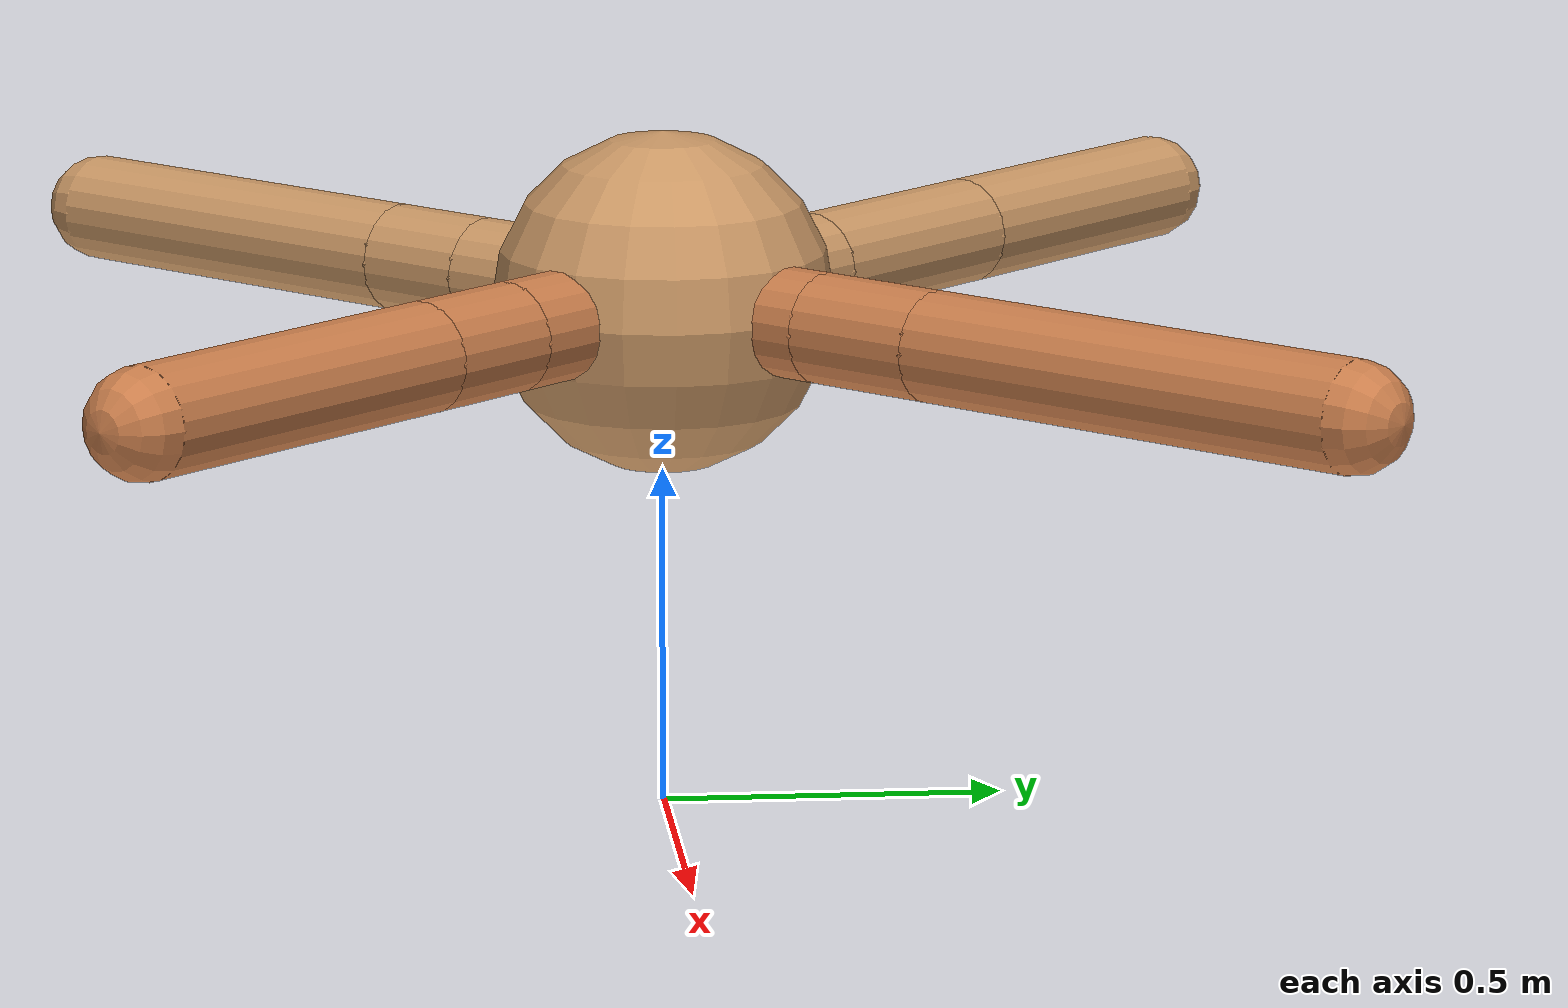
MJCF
<mujoco model="ant">
  <compiler angle="degree" coordinate="local" inertiafromgeom="true" />
  <option integrator="RK4" timestep="0.01" />
  <custom>
    <numeric data="0.0 0.0 0.55 1.0 0.0 0.0 0.0 0.0 1.0 0.0 -1.0 0.0 -1.0 0.0 1.0" name="init_qpos" />
  </custom>
  <default>
    <joint armature="1" damping="1" limited="true" />
    <geom conaffinity="0" condim="3" density="5.0" friction="1.5 0.1 0.1" margin="0.01" rgba="0.8 0.6 0.4 1" />
  </default>
  <worldbody>
    <body name="torso" pos="0 0 0.75">
      <geom name="torso_geom" pos="0 0 0" size="0.25" type="sphere" />

      <body name="front_left_leg" pos="0 0 0">
        <geom fromto="0.0 0.0 0.0 0.21149400979439037 0.21149400979439037 0.0" name="aux_1_geom" size="0.08" type="capsule" rgba=".8 .5 .3 1" />
        <body name="aux_1" pos="0.21149400979439037 0.21149400979439037 0.0">
          <joint axis="0 0 1" name="hip_1" pos="0.0 0.0 0.0" range="-40 40" type="hinge" />
          <geom fromto="0.0 0.0 0.0 0.1406006970231791 0.1406006970231791 0.0" name="left_leg_geom" size="0.08" type="capsule" rgba=".8 .5 .3 1" />
          <body pos="0.1406006970231791 0.1406006970231791 0.0" name="front_left_foot">
            <joint axis="-1 1 0" name="ankle_1" pos="0.0 0.0 0.0" range="30 100" type="hinge" />
            <geom fromto="0.0 0.0 0.0 0.5063285322870698 0.5063285322870698 0.0" name="left_ankle_geom" size="0.08" type="capsule" rgba=".8 .5 .3 1" />
          </body>
        </body>
      </body>
      <body name="front_right_leg" pos="0 0 0">
        <geom fromto="0.0 0.0 0.0 -0.24444455683897273 0.24444455683897273 0.0" name="aux_2_geom" size="0.08" type="capsule" />
        <body name="aux_2" pos="-0.24444455683897273 0.24444455683897273 0.0">
          <joint axis="0 0 1" name="hip_2" pos="0.0 0.0 0.0" range="-40 40" type="hinge" />
          <geom fromto="0.0 0.0 0.0 -0.25712782447751836 0.25712782447751836 0.0" name="right_leg_geom" size="0.08" type="capsule" />
          <body pos="-0.25712782447751836 0.25712782447751836 0.0" name="front_right_foot">
            <joint axis="1 1 0" name="ankle_2" pos="0.0 0.0 0.0" range="-100 -30" type="hinge" />
            <geom fromto="0.0 0.0 0.0 -0.3417307839136051 0.3417307839136051 0.0" name="right_ankle_geom" size="0.08" type="capsule" />
          </body>
        </body>
      </body>
      <body name="left_back_leg" pos="0 0 0">
        <geom fromto="0.0 0.0 0.0 -0.24590689459644818 -0.24590689459644818 0.0" name="aux_3_geom" size="0.08" type="capsule" />
        <body name="aux_3" pos="-0.24590689459644818 -0.24590689459644818 0.0">
          <joint axis="0 0 1" name="hip_3" pos="0.0 0.0 0.0" range="-40 40" type="hinge" />
          <geom fromto="0.0 0.0 0.0 -0.12004393838831112 -0.12004393838831112 0.0" name="back_leg_geom" size="0.08" type="capsule" />
          <body pos="-0.12004393838831112 -0.12004393838831112 0.0" name="left_back_foot">
            <joint axis="-1 1 0" name="ankle_3" pos="0.0 0.0 0.0" range="-100 -30" type="hinge" />
            <geom fromto="0.0 0.0 0.0 -0.4442989934037838 -0.4442989934037838 0.0" name="third_ankle_geom" size="0.08" type="capsule" />
          </body>
        </body>
      </body>
      <body name="right_back_leg" pos="0 0 0">
        <geom fromto="0.0 0.0 0.0 0.23844564633988657 -0.23844564633988657 0.0" name="aux_4_geom" size="0.08" type="capsule" rgba=".8 .5 .3 1" />
        <body name="aux_4" pos="0.23844564633988657 -0.23844564633988657 0.0">
          <joint axis="0 0 1" name="hip_4" pos="0.0 0.0 0.0" range="-40 40" type="hinge" />
          <geom fromto="0.0 0.0 0.0 0.12633540901572415 -0.12633540901572415 0.0" name="rightback_leg_geom" size="0.08" type="capsule" rgba=".8 .5 .3 1" />
          <body pos="0.12633540901572415 -0.12633540901572415 0.0" name="right_back_foot">
            <joint axis="1 1 0" name="ankle_4" pos="0.0 0.0 0.0" range="30 100" type="hinge" />
            <geom fromto="0.0 0.0 0.0 0.39483192490047947 -0.39483192490047947 0.0" name="fourth_ankle_geom" size="0.08" type="capsule" rgba=".8 .5 .3 1" />
          </body>
        </body>
      </body>
    </body>
  </worldbody>
  <actuator>
    <motor ctrllimited="true" ctrlrange="-1.0 1.0" joint="hip_4" gear="150" />
    <motor ctrllimited="true" ctrlrange="-1.0 1.0" joint="ankle_4" gear="150" />
    <motor ctrllimited="true" ctrlrange="-1.0 1.0" joint="hip_1" gear="150" />
    <motor ctrllimited="true" ctrlrange="-1.0 1.0" joint="ankle_1" gear="150" />
    <motor ctrllimited="true" ctrlrange="-1.0 1.0" joint="hip_2" gear="150" />
    <motor ctrllimited="true" ctrlrange="-1.0 1.0" joint="ankle_2" gear="150" />
    <motor ctrllimited="true" ctrlrange="-1.0 1.0" joint="hip_3" gear="150" />
    <motor ctrllimited="true" ctrlrange="-1.0 1.0" joint="ankle_3" gear="150" />
  </actuator>
</mujoco>
